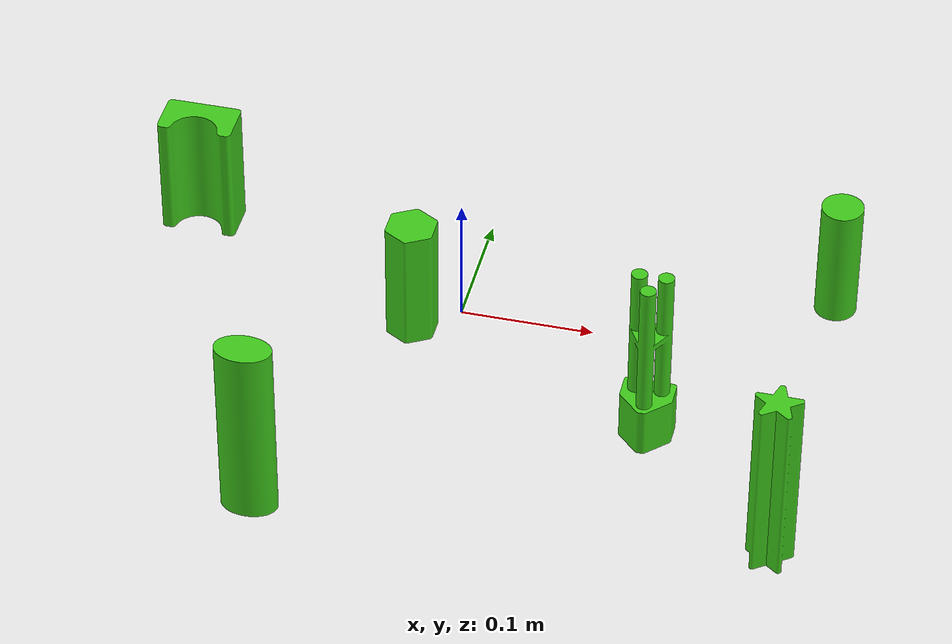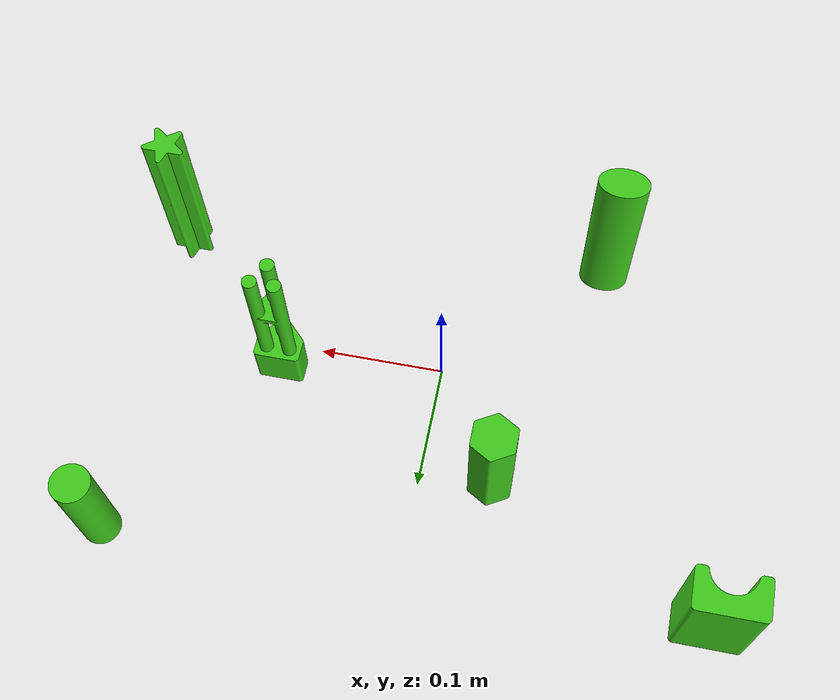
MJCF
<?xml version='1.0' encoding='utf-8'?>
<mujoco model="obj5">
  <asset>
    <mesh name="obj5" file="obj5.obj" scale="0.001 0.001 0.001" />
    <material name="mat5" rgba="0.24706 0.79608 0.10588 1" />
  </asset>
  <worldbody>
    <body>
      <body name="object">
        <geom name="visual" mesh="obj5" type="mesh" group="1" contype="0" conaffinity="0" material="mat5" />
        <geom name="collision" mesh="obj5" type="mesh" group="0" density="50" friction="0.95 0.3 0.1" solimp="0.998 0.998 0.001" solref="0.001 1" condim="4" />
      </body>
      <site name="bottom_site" pos="0 0 -0.025" size="0.005" rgba="0 0 0 0" />
      <site name="top_site" pos="0 0 0.025" size="0.005" rgba="0 0 0 0" />
      <site name="horizontal_radius_site" pos="0.03 0.03 0" size="0.005" rgba="0 0 0 0" />
    </body>
  </worldbody>
</mujoco>
